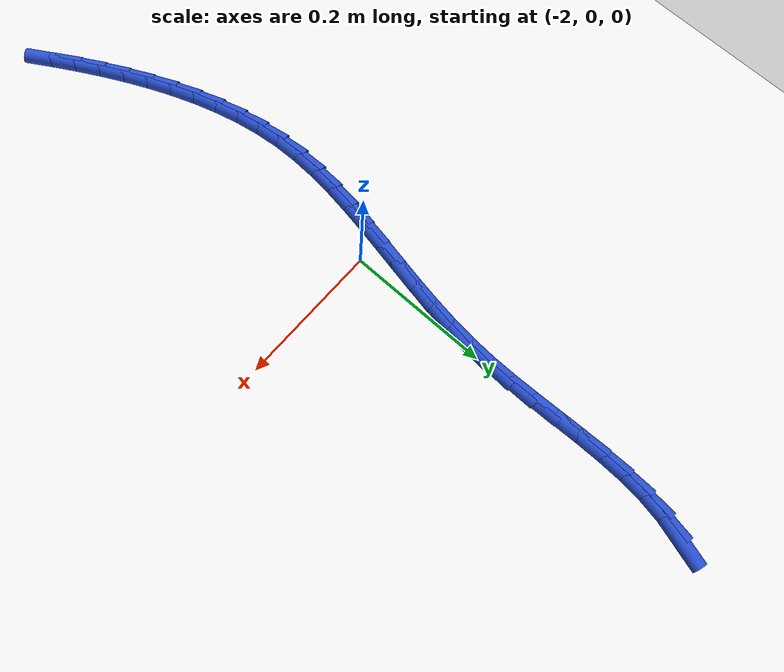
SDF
<sdf version="1.6">
 <world name="default">
  <model name="ground_plane">
   <static>1</static>
   <link name="link">
    <collision name="collision">
     <geometry><plane><normal>0 0 1</normal><size>100 100</size></plane></geometry>
     <surface><friction><ode><mu>100</mu><mu2>50</mu2></ode></friction></surface>
    </collision>
    <visual name="visual">
     <cast_shadows>0</cast_shadows>
     <geometry><plane><normal>0 0 1</normal><size>100 100</size></plane></geometry>
     <material>
      <script><uri>file://media/materials/scripts/gazebo.material</uri><name>Gazebo/WhiteGlow</name></script>
     </material>
    </visual>
   </link>
  </model>
  <model name="line">
   <link name="link_79">
    <pose>-1.989332305351607 0.5228705662661953 0.01 0 1.57 1.2814644911011328</pose>
    <collision name="collision">
     <geometry><cylinder><radius>0.01</radius><length>0.08</length></cylinder></geometry>
    </collision>
    <visual name="visual">
     <material>
      <script><name>Gazebo/Blue</name><uri>file://media/materials/scripts/gazebo.material</uri></script>
     </material>
     <geometry><cylinder><radius>0.01</radius><length>0.08</length></cylinder></geometry>
    </visual>
   </link>
   <link name="link_80">
    <pose>-1.9984277633996574 0.49231662539423443 0.01 0 1.57 1.3929762045763714</pose>
    <collision name="collision">
     <geometry><cylinder><radius>0.01</radius><length>0.08</length></cylinder></geometry>
    </collision>
    <visual name="visual">
     <material>
      <script><name>Gazebo/Blue</name><uri>file://media/materials/scripts/gazebo.material</uri></script>
     </material>
     <geometry><cylinder><radius>0.01</radius><length>0.08</length></cylinder></geometry>
    </visual>
   </link>
   <link name="link_81">
    <pose>-2.004172406534245 0.4603519269614691 0.01 0 1.57 1.4796993411933885</pose>
    <collision name="collision">
     <geometry><cylinder><radius>0.01</radius><length>0.08</length></cylinder></geometry>
    </collision>
    <visual name="visual">
     <material>
      <script><name>Gazebo/Blue</name><uri>file://media/materials/scripts/gazebo.material</uri></script>
     </material>
     <geometry><cylinder><radius>0.01</radius><length>0.08</length></cylinder></geometry>
    </visual>
   </link>
   <link name="link_82">
    <pose>-2.007201671453798 0.42719077847813963 0.01 0 1.57 1.5429993904882124</pose>
    <collision name="collision">
     <geometry><cylinder><radius>0.01</radius><length>0.08</length></cylinder></geometry>
    </collision>
    <visual name="visual">
     <material>
      <script><name>Gazebo/Blue</name><uri>file://media/materials/scripts/gazebo.material</uri></script>
     </material>
     <geometry><cylinder><radius>0.01</radius><length>0.08</length></cylinder></geometry>
    </visual>
   </link>
   <link name="link_83">
    <pose>-2.008150994856745 0.3930474874544861 0.01 0 1.57 -1.5566132205159138</pose>
    <collision name="collision">
     <geometry><cylinder><radius>0.01</radius><length>0.08</length></cylinder></geometry>
    </collision>
    <visual name="visual">
     <material>
      <script><name>Gazebo/Blue</name><uri>file://media/materials/scripts/gazebo.material</uri></script>
     </material>
     <geometry><cylinder><radius>0.01</radius><length>0.08</length></cylinder></geometry>
    </visual>
   </link>
   <link name="link_84">
    <pose>-2.007655813441513 0.3581363614007472 0.01 0 1.57 -1.5340368524712304</pose>
    <collision name="collision">
     <geometry><cylinder><radius>0.01</radius><length>0.08</length></cylinder></geometry>
    </collision>
    <visual name="visual">
     <material>
      <script><name>Gazebo/Blue</name><uri>file://media/materials/scripts/gazebo.material</uri></script>
     </material>
     <geometry><cylinder><radius>0.01</radius><length>0.08</length></cylinder></geometry>
    </visual>
   </link>
   <link name="link_85">
    <pose>-2.0063515639065295 0.32267170782716303 0.01 0 1.57 -1.5295426207815475</pose>
    <collision name="collision">
     <geometry><cylinder><radius>0.01</radius><length>0.08</length></cylinder></geometry>
    </collision>
    <visual name="visual">
     <material>
      <script><name>Gazebo/Blue</name><uri>file://media/materials/scripts/gazebo.material</uri></script>
     </material>
     <geometry><cylinder><radius>0.01</radius><length>0.08</length></cylinder></geometry>
    </visual>
   </link>
   <link name="link_86">
    <pose>-2.004873682950222 0.28686783424397366 0.01 0 1.57 -1.5425235950090557</pose>
    <collision name="collision">
     <geometry><cylinder><radius>0.01</radius><length>0.08</length></cylinder></geometry>
    </collision>
    <visual name="visual">
     <material>
      <script><name>Gazebo/Blue</name><uri>file://media/materials/scripts/gazebo.material</uri></script>
     </material>
     <geometry><cylinder><radius>0.01</radius><length>0.08</length></cylinder></geometry>
    </visual>
   </link>
   <link name="link_87">
    <pose>-2.0038576072710192 0.25093904816141777 0.01 0 1.57 1.5685316075813471</pose>
    <collision name="collision">
     <geometry><cylinder><radius>0.01</radius><length>0.08</length></cylinder></geometry>
    </collision>
    <visual name="visual">
     <material>
      <script><name>Gazebo/Blue</name><uri>file://media/materials/scripts/gazebo.material</uri></script>
     </material>
     <geometry><cylinder><radius>0.01</radius><length>0.08</length></cylinder></geometry>
    </visual>
   </link>
   <link name="link_88">
    <pose>-2.0039387735673473 0.21509965708973564 0.01 0 1.57 1.520556298948108</pose>
    <collision name="collision">
     <geometry><cylinder><radius>0.01</radius><length>0.08</length></cylinder></geometry>
    </collision>
    <visual name="visual">
     <material>
      <script><name>Gazebo/Blue</name><uri>file://media/materials/scripts/gazebo.material</uri></script>
     </material>
     <geometry><cylinder><radius>0.01</radius><length>0.08</length></cylinder></geometry>
    </visual>
   </link>
   <link name="link_89">
    <pose>-2.005725910362969 0.17955762008579626 0.01 0 1.57 1.4694151996065563</pose>
    <collision name="collision">
     <geometry><cylinder><radius>0.01</radius><length>0.08</length></cylinder></geometry>
    </collision>
    <visual name="visual">
     <material>
      <script><name>Gazebo/Blue</name><uri>file://media/materials/scripts/gazebo.material</uri></script>
     </material>
     <geometry><cylinder><radius>0.01</radius><length>0.08</length></cylinder></geometry>
    </visual>
   </link>
   <link name="link_90">
    <pose>-2.009302884316126 0.14439613810821808 0.01 0 1.57 1.4289539555306998</pose>
    <collision name="collision">
     <geometry><cylinder><radius>0.01</radius><length>0.08</length></cylinder></geometry>
    </collision>
    <visual name="visual">
     <material>
      <script><name>Gazebo/Blue</name><uri>file://media/materials/scripts/gazebo.material</uri></script>
     </material>
     <geometry><cylinder><radius>0.01</radius><length>0.08</length></cylinder></geometry>
    </visual>
   </link>
   <link name="link_91">
    <pose>-2.014274042762086 0.10958443180434134 0.01 0 1.57 1.3999391413276476</pose>
    <collision name="collision">
     <geometry><cylinder><radius>0.01</radius><length>0.08</length></cylinder></geometry>
    </collision>
    <visual name="visual">
     <material>
      <script><name>Gazebo/Blue</name><uri>file://media/materials/scripts/gazebo.material</uri></script>
     </material>
     <geometry><cylinder><radius>0.01</radius><length>0.08</length></cylinder></geometry>
    </visual>
   </link>
   <link name="link_92">
    <pose>-2.0202261165828346 0.07508753444316311 0.01 0 1.57 1.38251317933754</pose>
    <collision name="collision">
     <geometry><cylinder><radius>0.01</radius><length>0.08</length></cylinder></geometry>
    </collision>
    <visual name="visual">
     <material>
      <script><name>Gazebo/Blue</name><uri>file://media/materials/scripts/gazebo.material</uri></script>
     </material>
     <geometry><cylinder><radius>0.01</radius><length>0.08</length></cylinder></geometry>
    </visual>
   </link>
   <link name="link_93">
    <pose>-2.0267458366603552 0.040870479293680456 0.01 0 1.57 1.376809106779105</pose>
    <collision name="collision">
     <geometry><cylinder><radius>0.01</radius><length>0.08</length></cylinder></geometry>
    </collision>
    <visual name="visual">
     <material>
      <script><name>Gazebo/Blue</name><uri>file://media/materials/scripts/gazebo.material</uri></script>
     </material>
     <geometry><cylinder><radius>0.01</radius><length>0.08</length></cylinder></geometry>
    </visual>
   </link>
   <link name="link_94">
    <pose>-2.0334199338766346 0.006898299624889243 0.01 0 1.57 1.3830236956044042</pose>
    <collision name="collision">
     <geometry><cylinder><radius>0.01</radius><length>0.08</length></cylinder></geometry>
    </collision>
    <visual name="visual">
     <material>
      <script><name>Gazebo/Blue</name><uri>file://media/materials/scripts/gazebo.material</uri></script>
     </material>
     <geometry><cylinder><radius>0.01</radius><length>0.08</length></cylinder></geometry>
    </visual>
   </link>
   <link name="link_95">
    <pose>-2.0398351391136553 -0.0268639712942135 0.01 0 1.57 1.4014456744473354</pose>
    <collision name="collision">
     <geometry><cylinder><radius>0.01</radius><length>0.08</length></cylinder></geometry>
    </collision>
    <visual name="visual">
     <material>
      <script><name>Gazebo/Blue</name><uri>file://media/materials/scripts/gazebo.material</uri></script>
     </material>
     <geometry><cylinder><radius>0.01</radius><length>0.08</length></cylinder></geometry>
    </visual>
   </link>
   <link name="link_96">
    <pose>-2.045578183253402 -0.0604513001946311 0.01 0 1.57 1.4324339924286216</pose>
    <collision name="collision">
     <geometry><cylinder><radius>0.01</radius><length>0.08</length></cylinder></geometry>
    </collision>
    <visual name="visual">
     <material>
      <script><name>Gazebo/Blue</name><uri>file://media/materials/scripts/gazebo.material</uri></script>
     </material>
     <geometry><cylinder><radius>0.01</radius><length>0.08</length></cylinder></geometry>
    </visual>
   </link>
   <link name="link_97">
    <pose>-2.050235797177862 -0.09389865380736692 0.01 0 1.57 1.4763364537004195</pose>
    <collision name="collision">
     <geometry><cylinder><radius>0.01</radius><length>0.08</length></cylinder></geometry>
    </collision>
    <visual name="visual">
     <material>
      <script><name>Gazebo/Blue</name><uri>file://media/materials/scripts/gazebo.material</uri></script>
     </material>
     <geometry><cylinder><radius>0.01</radius><length>0.08</length></cylinder></geometry>
    </visual>
   </link>
   <link name="link_98">
    <pose>-2.0533947117690188 -0.12724099886342355 0.01 0 1.57 1.5333368568740957</pose>
    <collision name="collision">
     <geometry><cylinder><radius>0.01</radius><length>0.08</length></cylinder></geometry>
    </collision>
    <visual name="visual">
     <material>
      <script><name>Gazebo/Blue</name><uri>file://media/materials/scripts/gazebo.material</uri></script>
     </material>
     <geometry><cylinder><radius>0.01</radius><length>0.08</length></cylinder></geometry>
    </visual>
   </link>
   <link name="link_99">
    <pose>-2.0546416579088564 -0.16051330209380577 0.01 0 1.57 -1.538365531827235</pose>
    <collision name="collision">
     <geometry><cylinder><radius>0.01</radius><length>0.08</length></cylinder></geometry>
    </collision>
    <visual name="visual">
     <material>
      <script><name>Gazebo/Blue</name><uri>file://media/materials/scripts/gazebo.material</uri></script>
     </material>
     <geometry><cylinder><radius>0.01</radius><length>0.08</length></cylinder></geometry>
    </visual>
   </link>
   <link name="link_100">
    <pose>-2.0535633701382863 -0.19375052964534217 0.01 0 1.57 -1.4599158488709547</pose>
    <collision name="collision">
     <geometry><cylinder><radius>0.01</radius><length>0.08</length></cylinder></geometry>
    </collision>
    <visual name="visual">
     <material>
      <script><name>Gazebo/Blue</name><uri>file://media/materials/scripts/gazebo.material</uri></script>
     </material>
     <geometry><cylinder><radius>0.01</radius><length>0.08</length></cylinder></geometry>
    </visual>
   </link>
   <link name="link_101">
    <pose>-2.049864948862996 -0.22696874969765618 0.01 0 1.57 -1.3863580437250722</pose>
    <collision name="collision">
     <geometry><cylinder><radius>0.01</radius><length>0.08</length></cylinder></geometry>
    </collision>
    <visual name="visual">
     <material>
      <script><name>Gazebo/Blue</name><uri>file://media/materials/scripts/gazebo.material</uri></script>
     </material>
     <geometry><cylinder><radius>0.01</radius><length>0.08</length></cylinder></geometry>
    </visual>
   </link>
   <link name="link_102">
    <pose>-2.043681153042575 -0.26011543233178325 0.01 0 1.57 -1.320544150617291</pose>
    <collision name="collision">
     <geometry><cylinder><radius>0.01</radius><length>0.08</length></cylinder></geometry>
    </collision>
    <visual name="visual">
     <material>
      <script><name>Gazebo/Blue</name><uri>file://media/materials/scripts/gazebo.material</uri></script>
     </material>
     <geometry><cylinder><radius>0.01</radius><length>0.08</length></cylinder></geometry>
    </visual>
   </link>
   <link name="link_103">
    <pose>-2.035244201307232 -0.2931224874867978 0.01 0 1.57 -1.2621418840904108</pose>
    <collision name="collision">
     <geometry><cylinder><radius>0.01</radius><length>0.08</length></cylinder></geometry>
    </collision>
    <visual name="visual">
     <material>
      <script><name>Gazebo/Blue</name><uri>file://media/materials/scripts/gazebo.material</uri></script>
     </material>
     <geometry><cylinder><radius>0.01</radius><length>0.08</length></cylinder></geometry>
    </visual>
   </link>
   <link name="link_104">
    <pose>-2.024786312287176 -0.32592182510177425 0.01 0 1.57 -1.2106708802055504</pose>
    <collision name="collision">
     <geometry><cylinder><radius>0.01</radius><length>0.08</length></cylinder></geometry>
    </collision>
    <visual name="visual">
     <material>
      <script><name>Gazebo/Blue</name><uri>file://media/materials/scripts/gazebo.material</uri></script>
     </material>
     <geometry><cylinder><radius>0.01</radius><length>0.08</length></cylinder></geometry>
    </visual>
   </link>
   <link name="link_105">
    <pose>-2.012539704612618 -0.35844535511578623 0.01 0 1.57 -1.165593827482907</pose>
    <collision name="collision">
     <geometry><cylinder><radius>0.01</radius><length>0.08</length></cylinder></geometry>
    </collision>
    <visual name="visual">
     <material>
      <script><name>Gazebo/Blue</name><uri>file://media/materials/scripts/gazebo.material</uri></script>
     </material>
     <geometry><cylinder><radius>0.01</radius><length>0.08</length></cylinder></geometry>
    </visual>
   </link>
   <link name="link_106">
    <pose>-1.9987365969137654 -0.39062498746790947 0.01 0 1.57 -1.1263786752394778</pose>
    <collision name="collision">
     <geometry><cylinder><radius>0.01</radius><length>0.08</length></cylinder></geometry>
    </collision>
    <visual name="visual">
     <material>
      <script><name>Gazebo/Blue</name><uri>file://media/materials/scripts/gazebo.material</uri></script>
     </material>
     <geometry><cylinder><radius>0.01</radius><length>0.08</length></cylinder></geometry>
    </visual>
   </link>
   <link name="link_107">
    <pose>-1.9836092078208292 -0.42239263209721767 0.01 0 1.57 -1.0925378796119671</pose>
    <collision name="collision">
     <geometry><cylinder><radius>0.01</radius><length>0.08</length></cylinder></geometry>
    </collision>
    <visual name="visual">
     <material>
      <script><name>Gazebo/Blue</name><uri>file://media/materials/scripts/gazebo.material</uri></script>
     </material>
     <geometry><cylinder><radius>0.01</radius><length>0.08</length></cylinder></geometry>
    </visual>
   </link>
   <link name="link_108">
    <pose>-1.9673897559640163 -0.45368019894278505 0.01 0 1.57 -1.0636517821857894</pose>
    <collision name="collision">
     <geometry><cylinder><radius>0.01</radius><length>0.08</length></cylinder></geometry>
    </collision>
    <visual name="visual">
     <material>
      <script><name>Gazebo/Blue</name><uri>file://media/materials/scripts/gazebo.material</uri></script>
     </material>
     <geometry><cylinder><radius>0.01</radius><length>0.08</length></cylinder></geometry>
    </visual>
   </link>
   <link name="link_109">
    <pose>-1.950310459973538 -0.48441959794368605 0.01 0 1.57 -1.0393350240849337</pose>
    <collision name="collision">
     <geometry><cylinder><radius>0.01</radius><length>0.08</length></cylinder></geometry>
    </collision>
    <visual name="visual">
     <material>
      <script><name>Gazebo/Blue</name><uri>file://media/materials/scripts/gazebo.material</uri></script>
     </material>
     <geometry><cylinder><radius>0.01</radius><length>0.08</length></cylinder></geometry>
    </visual>
   </link>
   <link name="link_110">
    <pose>-1.9326010600756764 -0.5145436875957472 0.01 0 1.57 -1.0173566319890655</pose>
    <collision name="collision">
     <geometry><cylinder><radius>0.01</radius><length>0.08</length></cylinder></geometry>
    </collision>
    <visual name="visual">
     <material>
      <script><name>Gazebo/Blue</name><uri>file://media/materials/scripts/gazebo.material</uri></script>
     </material>
     <geometry><cylinder><radius>0.01</radius><length>0.08</length></cylinder></geometry>
    </visual>
   </link>
  </model>
 </world>
</sdf>
